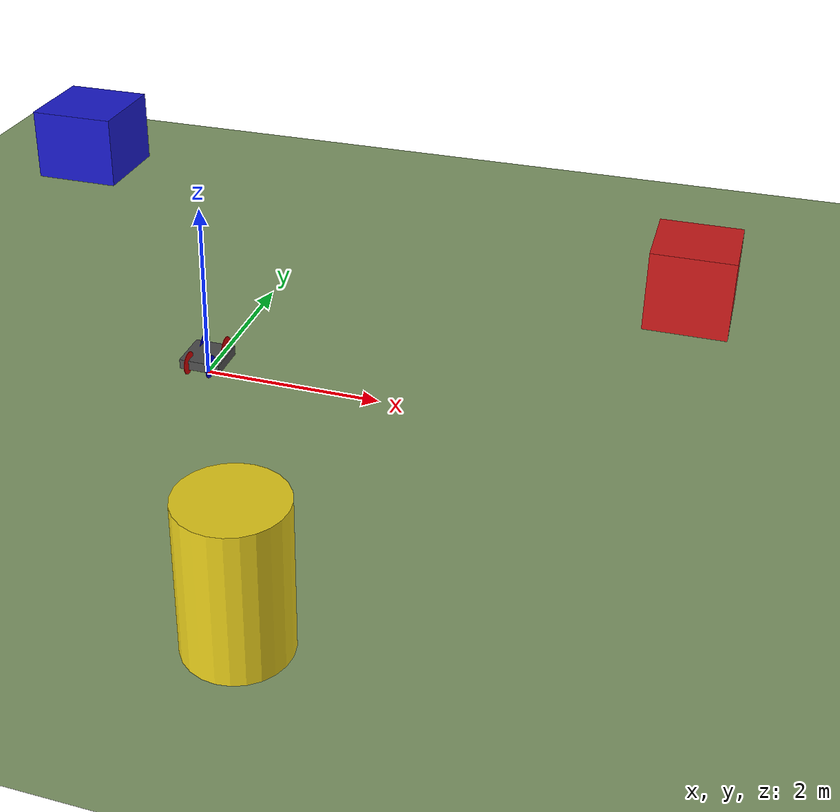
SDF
<?xml version="1.0" ?>
<sdf version="1.9">
  <world name="drone_detection">

    <physics name="1ms" type="ignored">
      <max_step_size>0.001</max_step_size>
      <real_time_factor>1.0</real_time_factor>
    </physics>

    <plugin filename="gz-sim-physics-system" name="gz::sim::systems::Physics"/>
    <plugin filename="gz-sim-sensors-system" name="gz::sim::systems::Sensors">
      <render_engine>ogre2</render_engine>
    </plugin>
    <plugin filename="gz-sim-scene-broadcaster-system" name="gz::sim::systems::SceneBroadcaster"/>
    <plugin filename="gz-sim-user-commands-system" name="gz::sim::systems::UserCommands"/>

    <!-- Sky and atmosphere -->
    <scene>
      <ambient>0.4 0.4 0.4 1</ambient>
      <background>0.53 0.81 0.98 1</background>
      <sky>
        <time>10</time>
        <sunrise>6</sunrise>
        <sunset>20</sunset>
        <clouds>
          <speed>12</speed>
          <mean_size>0.5</mean_size>
          <ambient>0.8 0.8 0.8 1</ambient>
        </clouds>
      </sky>
      <shadows>true</shadows>
    </scene>

    <!-- Sun: bright directional light with shadows -->
    <light name="sun" type="directional">
      <cast_shadows>true</cast_shadows>
      <pose>0 0 100 0 0 0</pose>
      <diffuse>1.0 0.95 0.85 1</diffuse>
      <specular>0.3 0.3 0.3 1</specular>
      <direction>-0.3 0.1 -0.95</direction>
      <attenuation>
        <range>1000</range>
        <constant>0.9</constant>
        <linear>0.01</linear>
        <quadratic>0.001</quadratic>
      </attenuation>
    </light>

    <!-- Ambient fill light -->
    <light name="ambient_fill" type="directional">
      <cast_shadows>false</cast_shadows>
      <diffuse>0.3 0.35 0.4 1</diffuse>
      <specular>0.0 0.0 0.0 1</specular>
      <direction>0.3 -0.1 -0.5</direction>
    </light>

    <!-- Grass ground plane with PBR textures -->
    <model name="ground_plane">
      <static>true</static>
      <link name="link">
        <collision name="collision">
          <geometry><plane><normal>0 0 1</normal><size>500 500</size></plane></geometry>
        </collision>
        <visual name="visual">
          <geometry><plane><normal>0 0 1</normal><size>500 500</size></plane></geometry>
          <material>
            <ambient>0.5 0.6 0.4 1</ambient>
            <diffuse>0.5 0.6 0.4 1</diffuse>
            <specular>0.05 0.05 0.05 1</specular>
            <pbr>
              <metal>
                <albedo_map>model://drone_yolo_detection/materials/textures/grass_albedo.png</albedo_map>
                <normal_map>model://drone_yolo_detection/materials/textures/grass_normal.png</normal_map>
                <roughness_map>model://drone_yolo_detection/materials/textures/grass_roughness.png</roughness_map>
                <metalness>0.0</metalness>
              </metal>
            </pbr>
          </material>
          <plugin filename="gz-sim-ogre2-material-system" name="gz::sim::systems::Material">
            <texture_scale>40 40</texture_scale>
          </plugin>
        </visual>
      </link>
    </model>

    <!-- Detection targets -->
    <model name="box_red">
      <static>true</static>
      <pose>5 3 0.5 0 0 0</pose>
      <link name="link">
        <collision name="col"><geometry><box><size>1 1 1</size></box></geometry></collision>
        <visual name="vis">
          <geometry><box><size>1 1 1</size></box></geometry>
          <material><ambient>0.8 0.1 0.1 1</ambient><diffuse>0.8 0.1 0.1 1</diffuse></material>
        </visual>
      </link>
    </model>

    <model name="box_blue">
      <static>true</static>
      <pose>-4 5 0.5 0 0 0</pose>
      <link name="link">
        <collision name="col"><geometry><box><size>1.2 1.2 1</size></box></geometry></collision>
        <visual name="vis">
          <geometry><box><size>1.2 1.2 1</size></box></geometry>
          <material><ambient>0.1 0.1 0.8 1</ambient><diffuse>0.1 0.1 0.8 1</diffuse></material>
        </visual>
      </link>
    </model>

    <model name="cylinder_yellow">
      <static>true</static>
      <pose>2 -4 0.75 0 0 0</pose>
      <link name="link">
        <collision name="col"><geometry><cylinder><radius>0.5</radius><length>1.5</length></cylinder></geometry></collision>
        <visual name="vis">
          <geometry><cylinder><radius>0.5</radius><length>1.5</length></cylinder></geometry>
          <material><ambient>0.9 0.8 0.1 1</ambient><diffuse>0.9 0.8 0.1 1</diffuse></material>
        </visual>
      </link>
    </model>

    <!-- Iris quadrotor -->
    <model name="iris">
      <pose>0 0 0.195 0 0 0</pose>

      <link name="base_link">
        <inertial>
          <mass>1.5</mass>
          <inertia><ixx>0.029125</ixx><ixy>0</ixy><ixz>0</ixz><iyy>0.029125</iyy><iyz>0</iyz><izz>0.055225</izz></inertia>
        </inertial>
        <collision name="base_col">
          <geometry><box><size>0.47 0.47 0.11</size></box></geometry>
        </collision>
        <visual name="base_vis">
          <geometry><box><size>0.47 0.47 0.11</size></box></geometry>
          <material><ambient>0.1 0.1 0.1 1</ambient><diffuse>0.3 0.3 0.3 1</diffuse></material>
        </visual>

        <sensor name="camera_down" type="camera">
          <pose>0 0 -0.06 0 1.5708 0</pose>
          <always_on>true</always_on>
          <update_rate>30</update_rate>
          <camera>
            <horizontal_fov>1.3962634</horizontal_fov>
            <image><width>640</width><height>480</height><format>R8G8B8</format></image>
            <clip><near>0.1</near><far>100</far></clip>
          </camera>
          <topic>/drone/camera/image_raw</topic>
        </sensor>
      </link>

      <!-- Rotor 0: front-right, CCW -->
      <link name="rotor_0">
        <pose>0.13 -0.22 0.023 0 0 0</pose>
        <inertial><mass>0.025</mass><inertia><ixx>9.75e-7</ixx><ixy>0</ixy><ixz>0</ixz><iyy>1.66704e-4</iyy><iyz>0</iyz><izz>1.66704e-4</izz></inertia></inertial>
        <collision name="col"><pose>0 0 0 0 1.5707963 0</pose><geometry><cylinder><radius>0.128</radius><length>0.005</length></cylinder></geometry></collision>
        <visual name="vis"><pose>0 0 0 0 1.5707963 0</pose><geometry><cylinder><radius>0.128</radius><length>0.005</length></cylinder></geometry><material><ambient>0 0 0.8 1</ambient></material></visual>
      </link>
      <joint name="rotor_0_joint" type="revolute">
        <parent>base_link</parent><child>rotor_0</child>
        <axis><xyz>0 0 1</xyz><limit><lower>-1e16</lower><upper>1e16</upper></limit></axis>
      </joint>

      <!-- Rotor 1: back-left, CCW -->
      <link name="rotor_1">
        <pose>-0.13 0.22 0.023 0 0 0</pose>
        <inertial><mass>0.025</mass><inertia><ixx>9.75e-7</ixx><ixy>0</ixy><ixz>0</ixz><iyy>1.66704e-4</iyy><iyz>0</iyz><izz>1.66704e-4</izz></inertia></inertial>
        <collision name="col"><pose>0 0 0 0 1.5707963 0</pose><geometry><cylinder><radius>0.128</radius><length>0.005</length></cylinder></geometry></collision>
        <visual name="vis"><pose>0 0 0 0 1.5707963 0</pose><geometry><cylinder><radius>0.128</radius><length>0.005</length></cylinder></geometry><material><ambient>0 0 0.8 1</ambient></material></visual>
      </link>
      <joint name="rotor_1_joint" type="revolute">
        <parent>base_link</parent><child>rotor_1</child>
        <axis><xyz>0 0 1</xyz><limit><lower>-1e16</lower><upper>1e16</upper></limit></axis>
      </joint>

      <!-- Rotor 2: front-left, CW -->
      <link name="rotor_2">
        <pose>0.13 0.22 0.023 0 0 0</pose>
        <inertial><mass>0.025</mass><inertia><ixx>9.75e-7</ixx><ixy>0</ixy><ixz>0</ixz><iyy>1.66704e-4</iyy><iyz>0</iyz><izz>1.66704e-4</izz></inertia></inertial>
        <collision name="col"><pose>0 0 0 0 1.5707963 0</pose><geometry><cylinder><radius>0.128</radius><length>0.005</length></cylinder></geometry></collision>
        <visual name="vis"><pose>0 0 0 0 1.5707963 0</pose><geometry><cylinder><radius>0.128</radius><length>0.005</length></cylinder></geometry><material><ambient>0.8 0 0 1</ambient></material></visual>
      </link>
      <joint name="rotor_2_joint" type="revolute">
        <parent>base_link</parent><child>rotor_2</child>
        <axis><xyz>0 0 1</xyz><limit><lower>-1e16</lower><upper>1e16</upper></limit></axis>
      </joint>

      <!-- Rotor 3: back-right, CW -->
      <link name="rotor_3">
        <pose>-0.13 -0.22 0.023 0 0 0</pose>
        <inertial><mass>0.025</mass><inertia><ixx>9.75e-7</ixx><ixy>0</ixy><ixz>0</ixz><iyy>1.66704e-4</iyy><iyz>0</iyz><izz>1.66704e-4</izz></inertia></inertial>
        <collision name="col"><pose>0 0 0 0 1.5707963 0</pose><geometry><cylinder><radius>0.128</radius><length>0.005</length></cylinder></geometry></collision>
        <visual name="vis"><pose>0 0 0 0 1.5707963 0</pose><geometry><cylinder><radius>0.128</radius><length>0.005</length></cylinder></geometry><material><ambient>0.8 0 0 1</ambient></material></visual>
      </link>
      <joint name="rotor_3_joint" type="revolute">
        <parent>base_link</parent><child>rotor_3</child>
        <axis><xyz>0 0 1</xyz><limit><lower>-1e16</lower><upper>1e16</upper></limit></axis>
      </joint>

      <!-- Motor model plugins -->
      <plugin filename="gz-sim-multicopter-motor-model-system"
              name="gz::sim::systems::MulticopterMotorModel">
        <robotNamespace>iris</robotNamespace>
        <jointName>rotor_0_joint</jointName>
        <linkName>rotor_0</linkName>
        <turningDirection>ccw</turningDirection>
        <timeConstantUp>0.0125</timeConstantUp>
        <timeConstantDown>0.025</timeConstantDown>
        <maxRotVelocity>838</maxRotVelocity>
        <motorConstant>8.54858e-06</motorConstant>
        <momentConstant>0.016</momentConstant>
        <commandSubTopic>command/motor_speed</commandSubTopic>
        <motorNumber>0</motorNumber>
        <rotorDragCoefficient>8.06428e-05</rotorDragCoefficient>
        <rollingMomentCoefficient>1e-06</rollingMomentCoefficient>
        <motorSpeedPubTopic>motor_speed/0</motorSpeedPubTopic>
        <rotorVelocitySlowdownSim>10</rotorVelocitySlowdownSim>
      </plugin>

      <plugin filename="gz-sim-multicopter-motor-model-system"
              name="gz::sim::systems::MulticopterMotorModel">
        <robotNamespace>iris</robotNamespace>
        <jointName>rotor_1_joint</jointName>
        <linkName>rotor_1</linkName>
        <turningDirection>ccw</turningDirection>
        <timeConstantUp>0.0125</timeConstantUp>
        <timeConstantDown>0.025</timeConstantDown>
        <maxRotVelocity>838</maxRotVelocity>
        <motorConstant>8.54858e-06</motorConstant>
        <momentConstant>0.016</momentConstant>
        <commandSubTopic>command/motor_speed</commandSubTopic>
        <motorNumber>1</motorNumber>
        <rotorDragCoefficient>8.06428e-05</rotorDragCoefficient>
        <rollingMomentCoefficient>1e-06</rollingMomentCoefficient>
        <motorSpeedPubTopic>motor_speed/1</motorSpeedPubTopic>
        <rotorVelocitySlowdownSim>10</rotorVelocitySlowdownSim>
      </plugin>

      <plugin filename="gz-sim-multicopter-motor-model-system"
              name="gz::sim::systems::MulticopterMotorModel">
        <robotNamespace>iris</robotNamespace>
        <jointName>rotor_2_joint</jointName>
        <linkName>rotor_2</linkName>
        <turningDirection>cw</turningDirection>
        <timeConstantUp>0.0125</timeConstantUp>
        <timeConstantDown>0.025</timeConstantDown>
        <maxRotVelocity>838</maxRotVelocity>
        <motorConstant>8.54858e-06</motorConstant>
        <momentConstant>0.016</momentConstant>
        <commandSubTopic>command/motor_speed</commandSubTopic>
        <motorNumber>2</motorNumber>
        <rotorDragCoefficient>8.06428e-05</rotorDragCoefficient>
        <rollingMomentCoefficient>1e-06</rollingMomentCoefficient>
        <motorSpeedPubTopic>motor_speed/2</motorSpeedPubTopic>
        <rotorVelocitySlowdownSim>10</rotorVelocitySlowdownSim>
      </plugin>

      <plugin filename="gz-sim-multicopter-motor-model-system"
              name="gz::sim::systems::MulticopterMotorModel">
        <robotNamespace>iris</robotNamespace>
        <jointName>rotor_3_joint</jointName>
        <linkName>rotor_3</linkName>
        <turningDirection>cw</turningDirection>
        <timeConstantUp>0.0125</timeConstantUp>
        <timeConstantDown>0.025</timeConstantDown>
        <maxRotVelocity>838</maxRotVelocity>
        <motorConstant>8.54858e-06</motorConstant>
        <momentConstant>0.016</momentConstant>
        <commandSubTopic>command/motor_speed</commandSubTopic>
        <motorNumber>3</motorNumber>
        <rotorDragCoefficient>8.06428e-05</rotorDragCoefficient>
        <rollingMomentCoefficient>1e-06</rollingMomentCoefficient>
        <motorSpeedPubTopic>motor_speed/3</motorSpeedPubTopic>
        <rotorVelocitySlowdownSim>10</rotorVelocitySlowdownSim>
      </plugin>

      <!-- Velocity controller -->
      <plugin filename="gz-sim-multicopter-control-system"
              name="gz::sim::systems::MulticopterVelocityControl">
        <robotNamespace>iris</robotNamespace>
        <commandSubTopic>cmd_vel</commandSubTopic>
        <enableSubTopic>enable</enableSubTopic>
        <comLinkName>base_link</comLinkName>
        <velocityGain>2.7 2.7 2.7</velocityGain>
        <attitudeGain>2 3 0.15</attitudeGain>
        <angularRateGain>0.4 0.52 0.18</angularRateGain>
        <maximumLinearAcceleration>2 2 2</maximumLinearAcceleration>
        <rotorConfiguration>
          <rotor>
            <jointName>rotor_0_joint</jointName>
            <armLength>0.26</armLength>
            <forceConstant>8.54858e-06</forceConstant>
            <momentConstant>0.016</momentConstant>
            <direction>1</direction>
          </rotor>
          <rotor>
            <jointName>rotor_1_joint</jointName>
            <armLength>0.26</armLength>
            <forceConstant>8.54858e-06</forceConstant>
            <momentConstant>0.016</momentConstant>
            <direction>1</direction>
          </rotor>
          <rotor>
            <jointName>rotor_2_joint</jointName>
            <armLength>0.26</armLength>
            <forceConstant>8.54858e-06</forceConstant>
            <momentConstant>0.016</momentConstant>
            <direction>-1</direction>
          </rotor>
          <rotor>
            <jointName>rotor_3_joint</jointName>
            <armLength>0.26</armLength>
            <forceConstant>8.54858e-06</forceConstant>
            <momentConstant>0.016</momentConstant>
            <direction>-1</direction>
          </rotor>
        </rotorConfiguration>
      </plugin>

    </model>

  </world>
</sdf>
